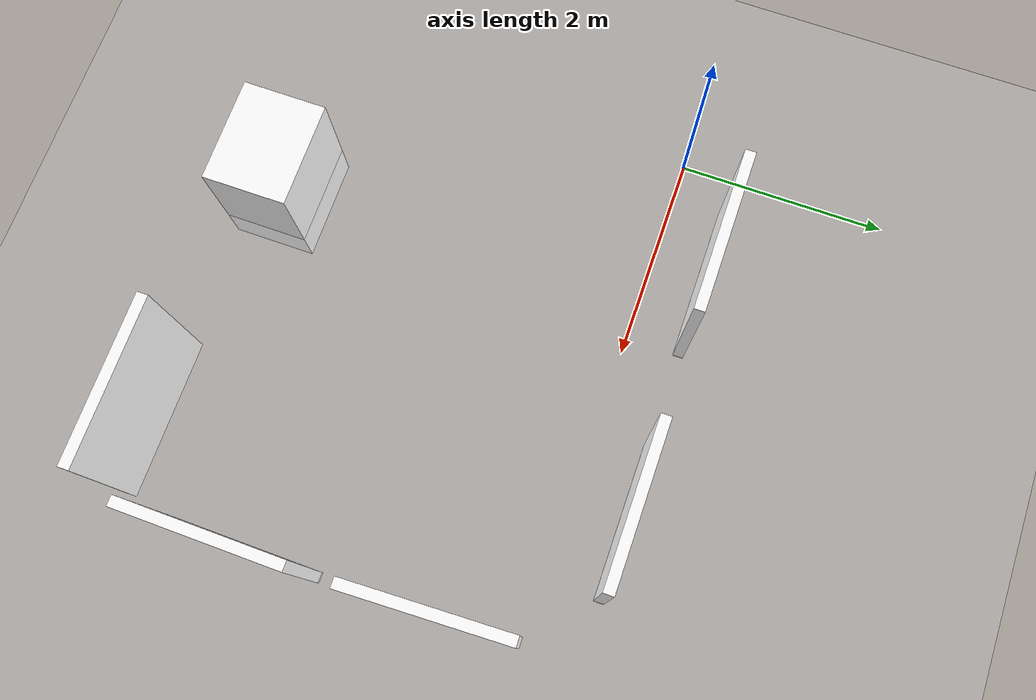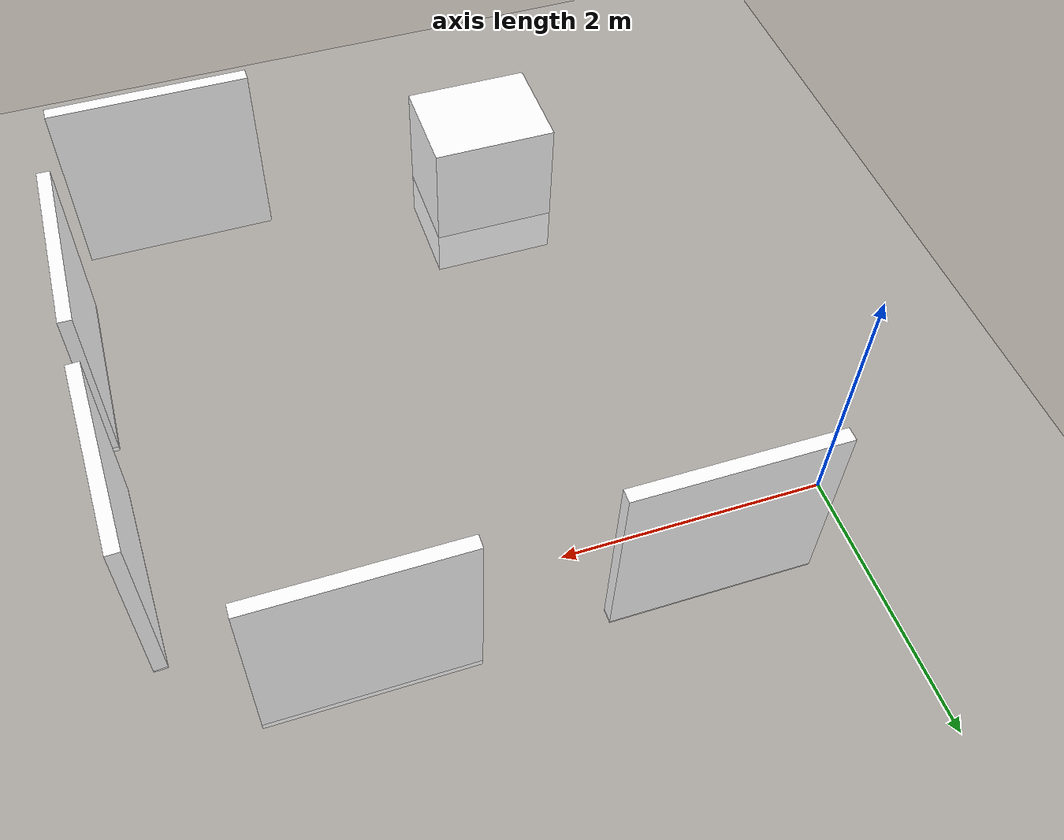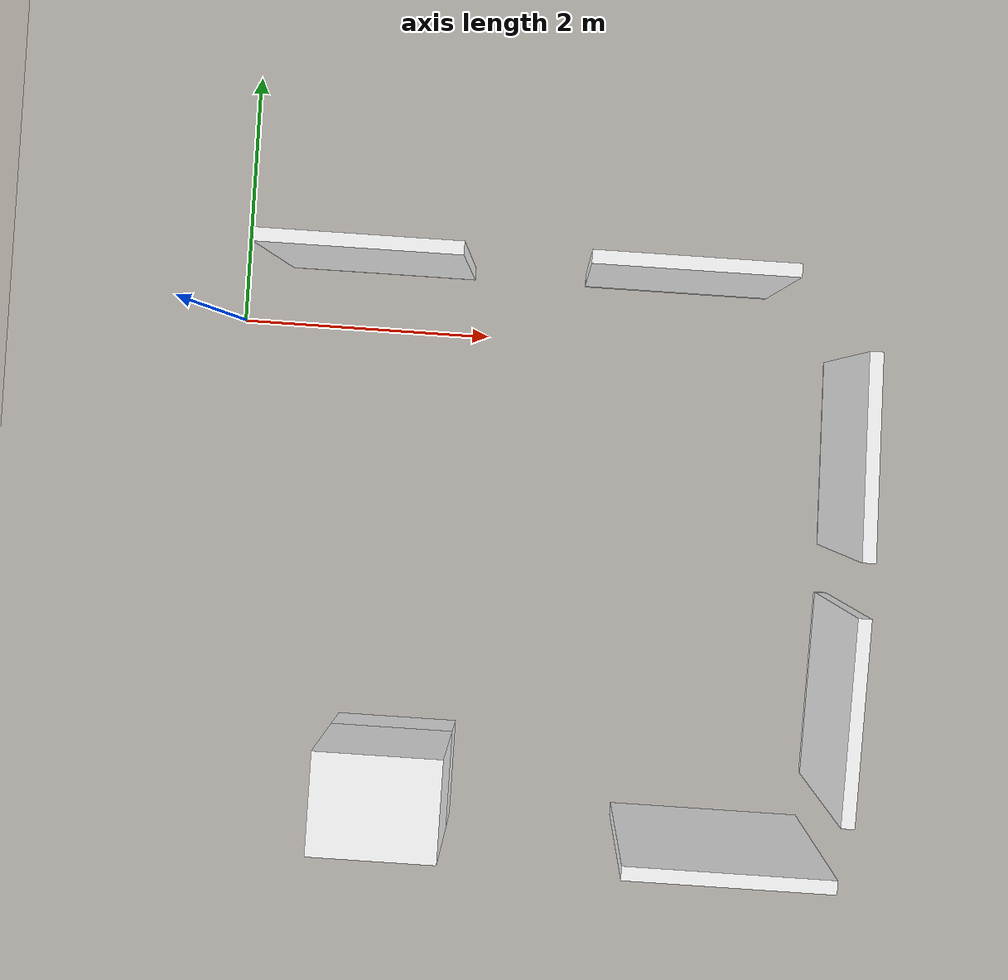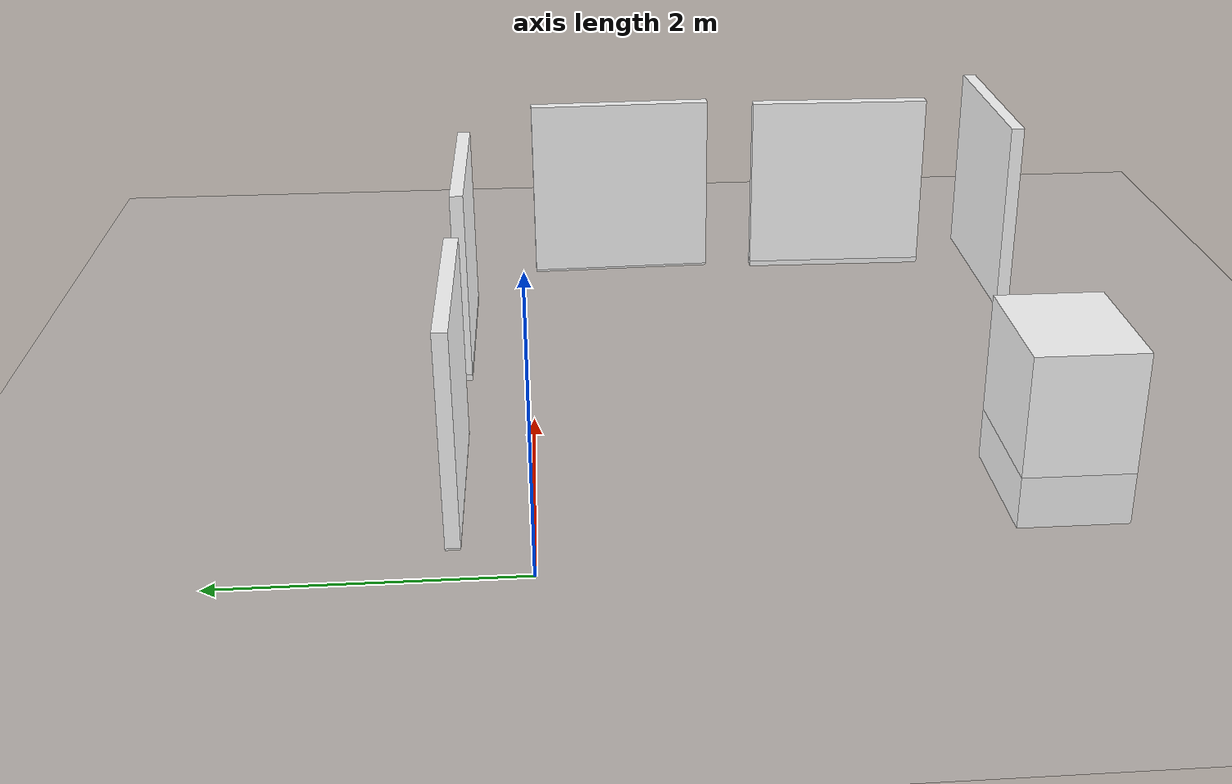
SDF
<sdf version="1.6">
 <world name="default">
  <light name="sun" type="directional">
   <pose>0 0 10 0 -0 0</pose>
   <diffuse>0.8 0.8 0.8 1</diffuse>
   <specular>0.2 0.2 0.2 1</specular>
   <attenuation>
    <range>1000</range>
    <constant>0.9</constant>
    <linear>0.01</linear>
    <quadratic>0.001</quadratic>
   </attenuation>
   <direction>-0.5 0.1 -0.9</direction>
  </light>
  <model name="ground_plane">
   <static>1</static>
   <link name="link">
    <collision name="collision">
     <geometry><plane><normal>0 0 1</normal><size>100 100</size></plane></geometry>
     <surface><friction><ode><mu>100</mu><mu2>50</mu2></ode></friction></surface>
    </collision>
    <visual name="visual">
     <cast_shadows>0</cast_shadows>
     <geometry><plane><normal>0 0 1</normal><size>100 100</size></plane></geometry>
     <material>
      <script><uri>file://media/materials/scripts/gazebo.material</uri><name>Gazebo/Grey</name></script>
     </material>
    </visual>
    <velocity_decay><linear>0</linear><angular>0</angular></velocity_decay>
   </link>
  </model>
  <physics name="default_physics" default="0" type="ode">
   <max_step_size>0.001</max_step_size>
   <real_time_factor>1</real_time_factor>
   <real_time_update_rate>1000</real_time_update_rate>
  </physics>
  <scene><ambient>0.7 0.7 0.7 1</ambient><background>0.7 0.7 0.7 1</background><shadows>1</shadows></scene>
  <spherical_coordinates>
   <surface_model>EARTH_WGS84</surface_model>
   <latitude_deg>0</latitude_deg>
   <longitude_deg>0</longitude_deg>
   <elevation>0</elevation>
   <heading_deg>0</heading_deg>
  </spherical_coordinates>
  <model name="qr_box_stove_0">
   <pose>1.42213 -3.66611 0.25 0 -0 0</pose>
   <static>1</static>
   <link name="link">
    <collision name="collision"><geometry><box><size>1 0.8 1.3</size></box></geometry></collision>
    <visual name="visual">
     <geometry><box><size>1 0.8 1.3</size></box></geometry>
     <material>
      <ambient>1 1 1 1</ambient>
      <script>
       <uri>model://qr_box_stove/materials/scripts</uri>
       <uri>model://qr_box_stove/materials/textures</uri>
       <name>vrc/qr_stove</name>
      </script>
     </material>
    </visual>
    <velocity_decay><linear>0</linear><angular>0</angular></velocity_decay>
   </link>
  </model>
  <model name="qr_box_paint1">
   <pose>4.86972 -2.66744 0.697307 0 -0 1.55525</pose>
   <static>1</static>
   <link name="link">
    <collision name="collision"><geometry><box><size>1.5 0.1 1.5</size></box></geometry></collision>
    <visual name="visual">
     <geometry><box><size>1.5 0.1 1.5</size></box></geometry>
     <material>
      <ambient>1 1 1 1</ambient>
      <script>
       <uri>model://qr_box_paint1/materials/scripts</uri>
       <uri>model://qr_box_paint1/materials/textures</uri>
       <name>vrc/qr_paint1</name>
      </script>
     </material>
    </visual>
    <velocity_decay><linear>0</linear><angular>0</angular></velocity_decay>
   </link>
  </model>
  <model name="qr_box_paint2">
   <pose>3.51987 0.525326 0.691313 0 -0 0</pose>
   <static>1</static>
   <link name="link">
    <collision name="collision"><geometry><box><size>1.5 0.1 1.5</size></box></geometry></collision>
    <visual name="visual">
     <geometry><box><size>1.5 0.1 1.5</size></box></geometry>
     <material>
      <ambient>1 1 1 1</ambient>
      <script>
       <uri>model://qr_box_paint2/materials/scripts</uri>
       <uri>model://qr_box_paint2/materials/textures</uri>
       <name>vrc/qr_paint2</name>
      </script>
     </material>
    </visual>
    <velocity_decay><linear>0</linear><angular>0</angular></velocity_decay>
   </link>
  </model>
  <model name="qr_box_paint3">
   <pose>1.11022 0.51692 0.730782 0 -0 0</pose>
   <static>1</static>
   <link name="link">
    <collision name="collision"><geometry><box><size>1.5 0.1 1.5</size></box></geometry></collision>
    <visual name="visual">
     <geometry><box><size>1.5 0.1 1.5</size></box></geometry>
     <material>
      <ambient>1 1 1 1</ambient>
      <script>
       <uri>model://qr_box_paint3/materials/scripts</uri>
       <uri>model://qr_box_paint3/materials/textures</uri>
       <name>vrc/qr_paint3</name>
      </script>
     </material>
    </visual>
    <velocity_decay><linear>0</linear><angular>0</angular></velocity_decay>
   </link>
  </model>
  <model name="qr_box_paint4">
   <pose>4.85083 -0.768184 0.726885 0 0 -1.54017</pose>
   <static>1</static>
   <link name="link">
    <collision name="collision"><geometry><box><size>1.5 0.1 1.5</size></box></geometry></collision>
    <visual name="visual">
     <geometry><box><size>1.5 0.1 1.5</size></box></geometry>
     <material>
      <ambient>1 1 1 1</ambient>
      <script>
       <uri>model://qr_box_paint4/materials/scripts</uri>
       <uri>model://qr_box_paint4/materials/textures</uri>
       <name>vrc/qr_paint4</name>
      </script>
     </material>
    </visual>
    <velocity_decay><linear>0</linear><angular>0</angular></velocity_decay>
   </link>
  </model>
  <model name="qr_box_paint5">
   <pose>4.00055 -3.75504 0.941396 0 -0 0</pose>
   <static>1</static>
   <link name="link">
    <collision name="collision"><geometry><box><size>1.5 0.1 1.5</size></box></geometry></collision>
    <visual name="visual">
     <geometry><box><size>1.5 0.1 1.5</size></box></geometry>
     <material>
      <ambient>1 1 1 1</ambient>
      <script>
       <uri>model://qr_box_paint5/materials/scripts</uri>
       <uri>model://qr_box_paint5/materials/textures</uri>
       <name>vrc/qr_paint5</name>
      </script>
     </material>
    </visual>
    <velocity_decay><linear>0</linear><angular>0</angular></velocity_decay>
   </link>
  </model>
  <gravity>0 0 -9.8</gravity>
  <magnetic_field>6e-06 2.3e-05 -4.2e-05</magnetic_field>
  <atmosphere type="adiabatic"/>
 </world>
</sdf>
